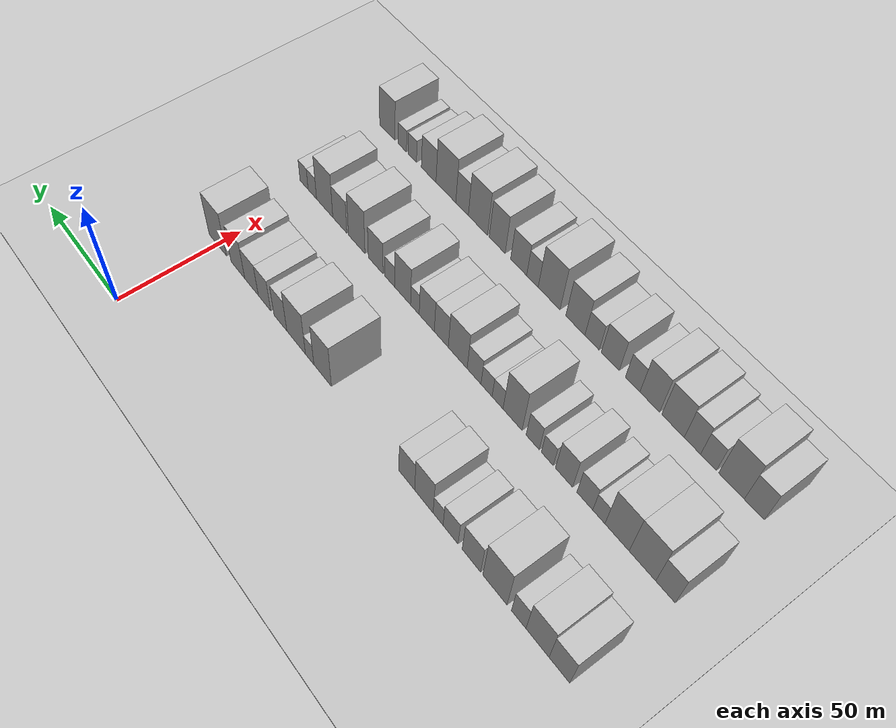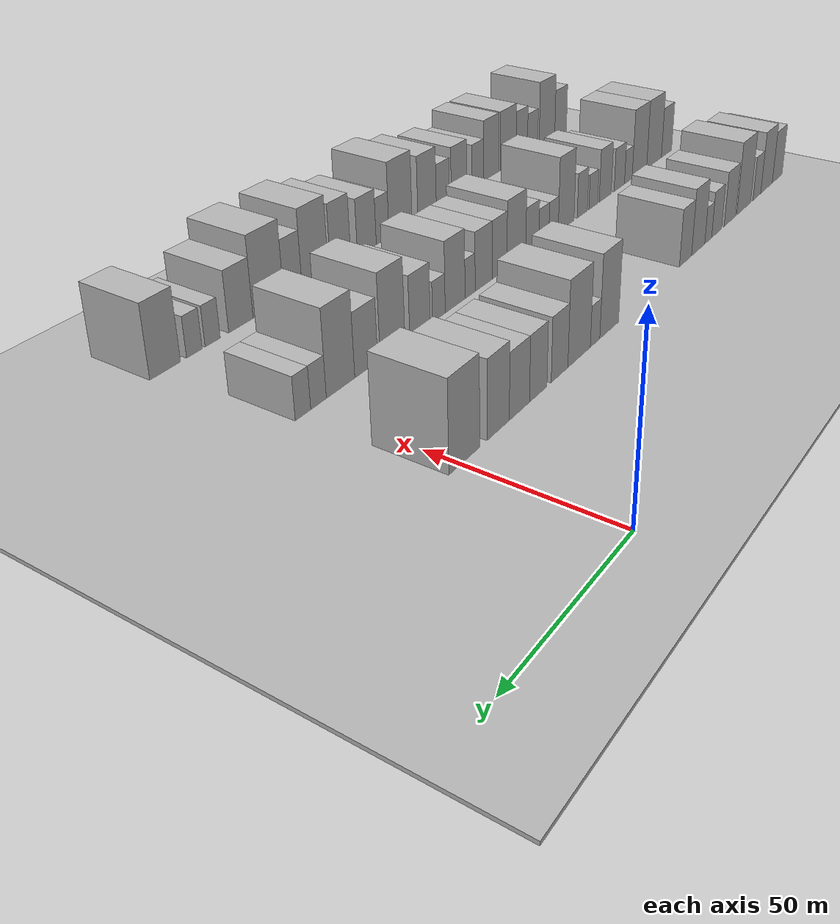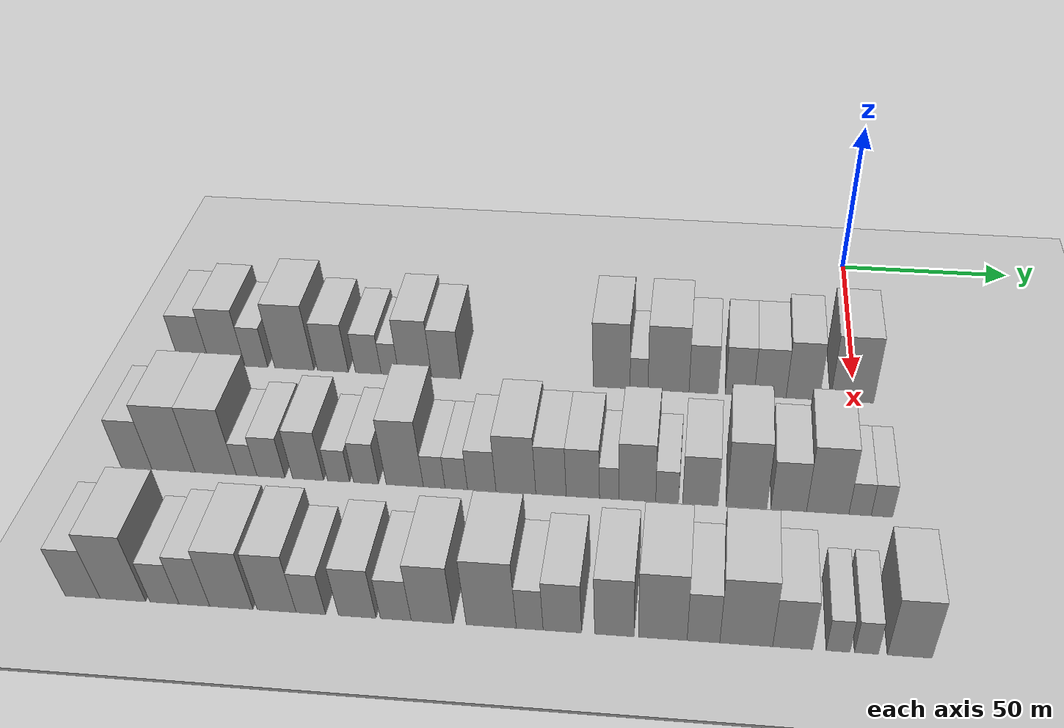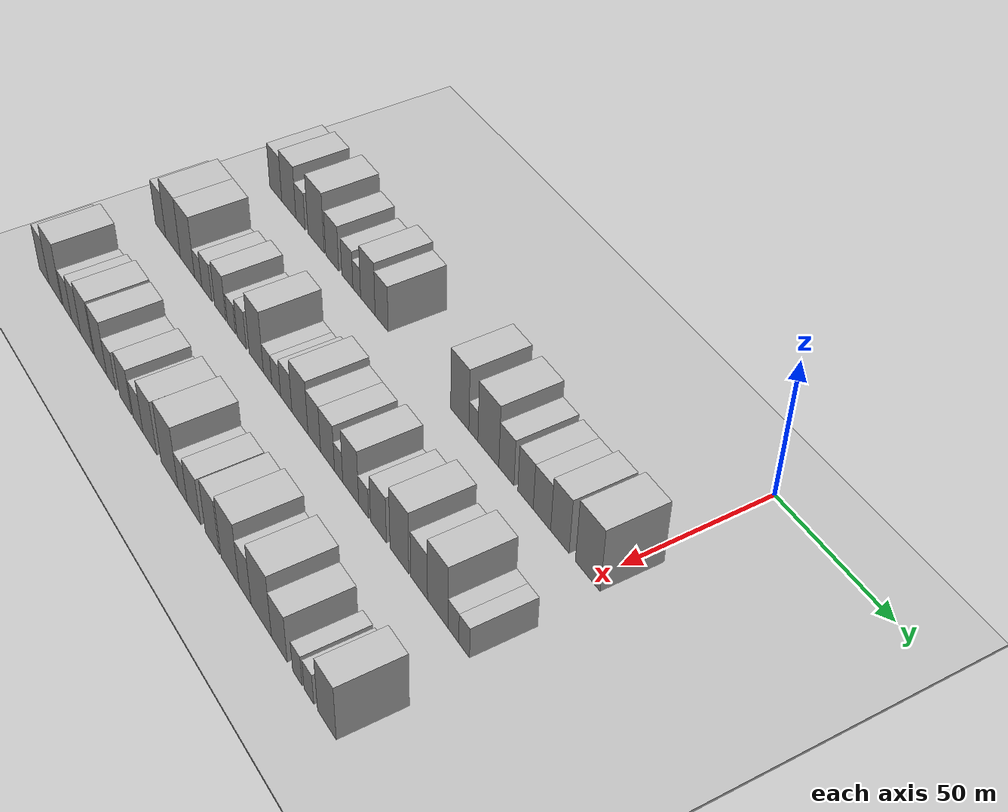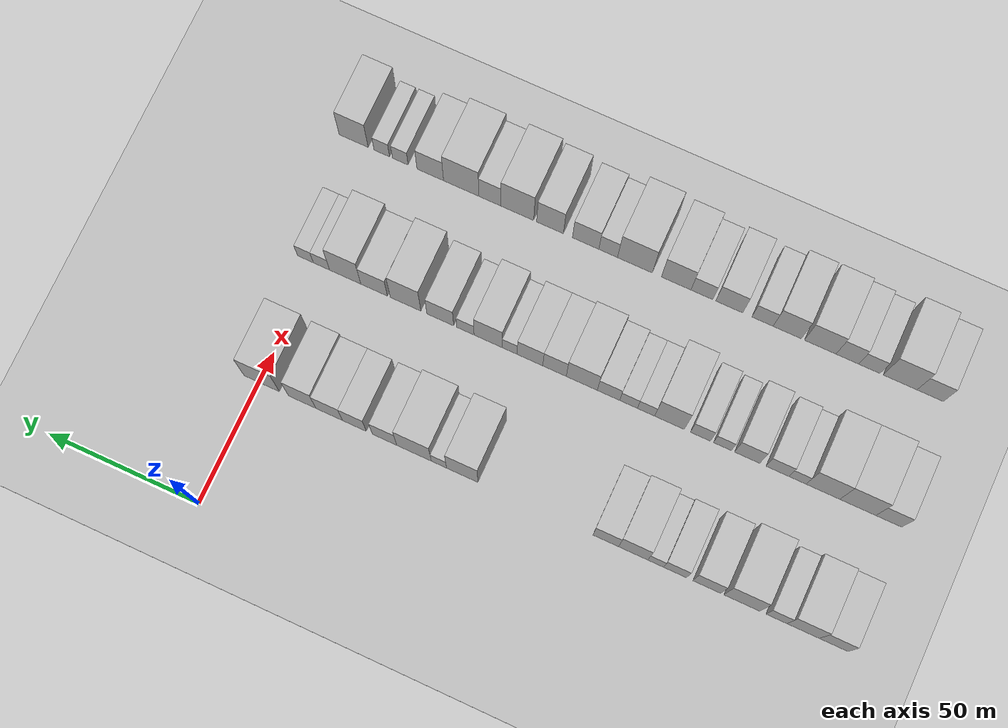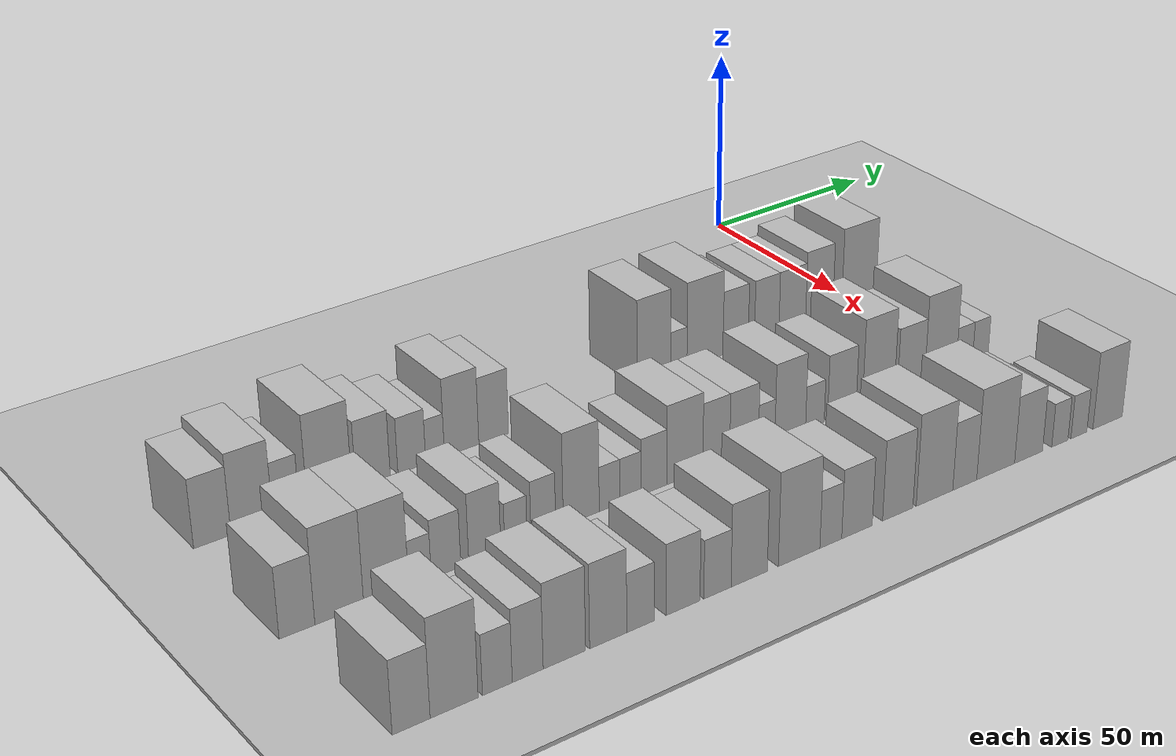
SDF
<sdf version="1.6">
 <world name="default">
  <include><name>ground_plane_1</name><uri>model://HANNAS_ground_plane</uri></include>
  <include>
   <name>ground_plane_2</name>
   <uri>model://HANNAS_ground_plane</uri>
   <pose>100 0 0  0 0 0</pose>
  </include>
  <model name="building_20">
   <static>1</static>
   <pose>50.0000 -185.6342 0 0.000000 0.000000 0.000000</pose>
   <link name="link">
    <pose>0 0 9.00 0 0 0</pose>
    <collision name="collision"><geometry><box><size>20.0000 8.9306 18.0000</size></box></geometry></collision>
    <visual name="visual">
     <cast_shadows>0</cast_shadows>
     <geometry><box><size>20.0000 8.9306 18.0000</size></box></geometry>
     <material>
      <script>
       <uri>model://HANNAS_wall/materials/scripts</uri>
       <uri>model://HANNAS_wall/materials/textures</uri>
       <name>vrc/HANNAS_wall</name>
      </script>
     </material>
    </visual>
   </link>
  </model>
  <model name="building_21">
   <static>1</static>
   <pose>50.0000 -176.0748 0 0.000000 0.000000 0.000000</pose>
   <link name="link">
    <pose>0 0 10.50 0 0 0</pose>
    <collision name="collision"><geometry><box><size>20.0000 10.1881 21.0000</size></box></geometry></collision>
    <visual name="visual">
     <cast_shadows>0</cast_shadows>
     <geometry><box><size>20.0000 10.1881 21.0000</size></box></geometry>
     <material>
      <script>
       <uri>model://HANNAS_wall/materials/scripts</uri>
       <uri>model://HANNAS_wall/materials/textures</uri>
       <name>vrc/HANNAS_wall</name>
      </script>
     </material>
    </visual>
   </link>
  </model>
  <model name="building_22">
   <static>1</static>
   <pose>50.0000 -167.6846 0 0.000000 0.000000 0.000000</pose>
   <link name="link">
    <pose>0 0 7.50 0 0 0</pose>
    <collision name="collision"><geometry><box><size>20.0000 6.5922 15.0000</size></box></geometry></collision>
    <visual name="visual">
     <cast_shadows>0</cast_shadows>
     <geometry><box><size>20.0000 6.5922 15.0000</size></box></geometry>
     <material>
      <script>
       <uri>model://HANNAS_wall/materials/scripts</uri>
       <uri>model://HANNAS_wall/materials/textures</uri>
       <name>vrc/HANNAS_wall</name>
      </script>
     </material>
    </visual>
   </link>
  </model>
  <model name="building_23">
   <static>1</static>
   <pose>50.0000 -156.7351 0 0.000000 0.000000 0.000000</pose>
   <link name="link">
    <pose>0 0 12.00 0 0 0</pose>
    <collision name="collision"><geometry><box><size>20.0000 11.3069 24.0000</size></box></geometry></collision>
    <visual name="visual">
     <cast_shadows>0</cast_shadows>
     <geometry><box><size>20.0000 11.3069 24.0000</size></box></geometry>
     <material>
      <script>
       <uri>model://HANNAS_wall/materials/scripts</uri>
       <uri>model://HANNAS_wall/materials/textures</uri>
       <name>vrc/HANNAS_wall</name>
      </script>
     </material>
    </visual>
   </link>
  </model>
  <model name="building_24">
   <static>1</static>
   <pose>50.0000 -145.6544 0 0.000000 0.000000 0.000000</pose>
   <link name="link">
    <pose>0 0 9.00 0 0 0</pose>
    <collision name="collision"><geometry><box><size>20.0000 8.8546 18.0000</size></box></geometry></collision>
    <visual name="visual">
     <cast_shadows>0</cast_shadows>
     <geometry><box><size>20.0000 8.8546 18.0000</size></box></geometry>
     <material>
      <script>
       <uri>model://HANNAS_wall/materials/scripts</uri>
       <uri>model://HANNAS_wall/materials/textures</uri>
       <name>vrc/HANNAS_wall</name>
      </script>
     </material>
    </visual>
   </link>
  </model>
  <model name="building_25">
   <static>1</static>
   <pose>50.0000 -135.5362 0 0.000000 0.000000 0.000000</pose>
   <link name="link">
    <pose>0 0 7.50 0 0 0</pose>
    <collision name="collision"><geometry><box><size>20.0000 7.3818 15.0000</size></box></geometry></collision>
    <visual name="visual">
     <cast_shadows>0</cast_shadows>
     <geometry><box><size>20.0000 7.3818 15.0000</size></box></geometry>
     <material>
      <script>
       <uri>model://HANNAS_wall/materials/scripts</uri>
       <uri>model://HANNAS_wall/materials/textures</uri>
       <name>vrc/HANNAS_wall</name>
      </script>
     </material>
    </visual>
   </link>
  </model>
  <model name="building_26">
   <static>1</static>
   <pose>50.0000 -129.3392 0 0.000000 0.000000 0.000000</pose>
   <link name="link">
    <pose>0 0 6.00 0 0 0</pose>
    <collision name="collision"><geometry><box><size>20.0000 5.0122 12.0000</size></box></geometry></collision>
    <visual name="visual">
     <cast_shadows>0</cast_shadows>
     <geometry><box><size>20.0000 5.0122 12.0000</size></box></geometry>
     <material>
      <script>
       <uri>model://HANNAS_wall/materials/scripts</uri>
       <uri>model://HANNAS_wall/materials/textures</uri>
       <name>vrc/HANNAS_wall</name>
      </script>
     </material>
    </visual>
   </link>
  </model>
  <model name="building_27">
   <static>1</static>
   <pose>50.0000 -122.1619 0 0.000000 0.000000 0.000000</pose>
   <link name="link">
    <pose>0 0 10.50 0 0 0</pose>
    <collision name="collision"><geometry><box><size>20.0000 9.3425 21.0000</size></box></geometry></collision>
    <visual name="visual">
     <cast_shadows>0</cast_shadows>
     <geometry><box><size>20.0000 9.3425 21.0000</size></box></geometry>
     <material>
      <script>
       <uri>model://HANNAS_wall/materials/scripts</uri>
       <uri>model://HANNAS_wall/materials/textures</uri>
       <name>vrc/HANNAS_wall</name>
      </script>
     </material>
    </visual>
   </link>
  </model>
  <model name="building_28">
   <static>1</static>
   <pose>50.0000 -113.3848 0 0.000000 0.000000 0.000000</pose>
   <link name="link">
    <pose>0 0 9.00 0 0 0</pose>
    <collision name="collision"><geometry><box><size>20.0000 8.2117 18.0000</size></box></geometry></collision>
    <visual name="visual">
     <cast_shadows>0</cast_shadows>
     <geometry><box><size>20.0000 8.2117 18.0000</size></box></geometry>
     <material>
      <script>
       <uri>model://HANNAS_wall/materials/scripts</uri>
       <uri>model://HANNAS_wall/materials/textures</uri>
       <name>vrc/HANNAS_wall</name>
      </script>
     </material>
    </visual>
   </link>
  </model>
  <model name="building_29">
   <static>1</static>
   <pose>50.0000 -66.9518 0 0.000000 0.000000 0.000000</pose>
   <link name="link">
    <pose>0 0 12.00 0 0 0</pose>
    <collision name="collision"><geometry><box><size>20.0000 10.2181 24.0000</size></box></geometry></collision>
    <visual name="visual">
     <cast_shadows>0</cast_shadows>
     <geometry><box><size>20.0000 10.2181 24.0000</size></box></geometry>
     <material>
      <script>
       <uri>model://HANNAS_wall/materials/scripts</uri>
       <uri>model://HANNAS_wall/materials/textures</uri>
       <name>vrc/HANNAS_wall</name>
      </script>
     </material>
    </visual>
   </link>
  </model>
  <model name="building_30">
   <static>1</static>
   <pose>50.0000 -59.3542 0 0.000000 0.000000 0.000000</pose>
   <link name="link">
    <pose>0 0 6.00 0 0 0</pose>
    <collision name="collision"><geometry><box><size>20.0000 4.9770 12.0000</size></box></geometry></collision>
    <visual name="visual">
     <cast_shadows>0</cast_shadows>
     <geometry><box><size>20.0000 4.9770 12.0000</size></box></geometry>
     <material>
      <script>
       <uri>model://HANNAS_wall/materials/scripts</uri>
       <uri>model://HANNAS_wall/materials/textures</uri>
       <name>vrc/HANNAS_wall</name>
      </script>
     </material>
    </visual>
   </link>
  </model>
  <model name="building_31">
   <static>1</static>
   <pose>50.0000 -51.2099 0 0.000000 0.000000 0.000000</pose>
   <link name="link">
    <pose>0 0 12.00 0 0 0</pose>
    <collision name="collision"><geometry><box><size>20.0000 11.3114 24.0000</size></box></geometry></collision>
    <visual name="visual">
     <cast_shadows>0</cast_shadows>
     <geometry><box><size>20.0000 11.3114 24.0000</size></box></geometry>
     <material>
      <script>
       <uri>model://HANNAS_wall/materials/scripts</uri>
       <uri>model://HANNAS_wall/materials/textures</uri>
       <name>vrc/HANNAS_wall</name>
      </script>
     </material>
    </visual>
   </link>
  </model>
  <model name="building_32">
   <static>1</static>
   <pose>50.0000 -41.5600 0 0.000000 0.000000 0.000000</pose>
   <link name="link">
    <pose>0 0 9.00 0 0 0</pose>
    <collision name="collision"><geometry><box><size>20.0000 7.9885 18.0000</size></box></geometry></collision>
    <visual name="visual">
     <cast_shadows>0</cast_shadows>
     <geometry><box><size>20.0000 7.9885 18.0000</size></box></geometry>
     <material>
      <script>
       <uri>model://HANNAS_wall/materials/scripts</uri>
       <uri>model://HANNAS_wall/materials/textures</uri>
       <name>vrc/HANNAS_wall</name>
      </script>
     </material>
    </visual>
   </link>
  </model>
  <model name="building_33">
   <static>1</static>
   <pose>50.0000 -31.6120 0 0.000000 0.000000 0.000000</pose>
   <link name="link">
    <pose>0 0 9.00 0 0 0</pose>
    <collision name="collision"><geometry><box><size>20.0000 7.9074 18.0000</size></box></geometry></collision>
    <visual name="visual">
     <cast_shadows>0</cast_shadows>
     <geometry><box><size>20.0000 7.9074 18.0000</size></box></geometry>
     <material>
      <script>
       <uri>model://HANNAS_wall/materials/scripts</uri>
       <uri>model://HANNAS_wall/materials/textures</uri>
       <name>vrc/HANNAS_wall</name>
      </script>
     </material>
    </visual>
   </link>
  </model>
  <model name="building_34">
   <static>1</static>
   <pose>50.0000 -23.2832 0 0.000000 0.000000 0.000000</pose>
   <link name="link">
    <pose>0 0 9.00 0 0 0</pose>
    <collision name="collision"><geometry><box><size>20.0000 8.7502 18.0000</size></box></geometry></collision>
    <visual name="visual">
     <cast_shadows>0</cast_shadows>
     <geometry><box><size>20.0000 8.7502 18.0000</size></box></geometry>
     <material>
      <script>
       <uri>model://HANNAS_wall/materials/scripts</uri>
       <uri>model://HANNAS_wall/materials/textures</uri>
       <name>vrc/HANNAS_wall</name>
      </script>
     </material>
    </visual>
   </link>
  </model>
  <model name="building_35">
   <static>1</static>
   <pose>50.0000 -14.3598 0 0.000000 0.000000 0.000000</pose>
   <link name="link">
    <pose>0 0 10.50 0 0 0</pose>
    <collision name="collision"><geometry><box><size>20.0000 9.0968 21.0000</size></box></geometry></collision>
    <visual name="visual">
     <cast_shadows>0</cast_shadows>
     <geometry><box><size>20.0000 9.0968 21.0000</size></box></geometry>
     <material>
      <script>
       <uri>model://HANNAS_wall/materials/scripts</uri>
       <uri>model://HANNAS_wall/materials/textures</uri>
       <name>vrc/HANNAS_wall</name>
      </script>
     </material>
    </visual>
   </link>
  </model>
  <model name="building_36">
   <static>1</static>
   <pose>50.0000 -0.9406 0 0.000000 0.000000 0.000000</pose>
   <link name="link">
    <pose>0 0 12.00 0 0 0</pose>
    <collision name="collision"><geometry><box><size>20.0000 11.7416 24.0000</size></box></geometry></collision>
    <visual name="visual">
     <cast_shadows>0</cast_shadows>
     <geometry><box><size>20.0000 11.7416 24.0000</size></box></geometry>
     <material>
      <script>
       <uri>model://HANNAS_wall/materials/scripts</uri>
       <uri>model://HANNAS_wall/materials/textures</uri>
       <name>vrc/HANNAS_wall</name>
      </script>
     </material>
    </visual>
   </link>
  </model>
  <model name="building_104">
   <static>1</static>
   <pose>90.0000 -186.7082 0 0.000000 0.000000 0.000000</pose>
   <link name="link">
    <pose>0 0 9.00 0 0 0</pose>
    <collision name="collision"><geometry><box><size>20.0000 8.2007 18.0000</size></box></geometry></collision>
    <visual name="visual">
     <cast_shadows>0</cast_shadows>
     <geometry><box><size>20.0000 8.2007 18.0000</size></box></geometry>
     <material>
      <script>
       <uri>model://HANNAS_wall/materials/scripts</uri>
       <uri>model://HANNAS_wall/materials/textures</uri>
       <name>vrc/HANNAS_wall</name>
      </script>
     </material>
    </visual>
   </link>
  </model>
  <model name="building_105">
   <static>1</static>
   <pose>90.0000 -176.8852 0 0.000000 0.000000 0.000000</pose>
   <link name="link">
    <pose>0 0 12.00 0 0 0</pose>
    <collision name="collision"><geometry><box><size>20.0000 11.4454 24.0000</size></box></geometry></collision>
    <visual name="visual">
     <cast_shadows>0</cast_shadows>
     <geometry><box><size>20.0000 11.4454 24.0000</size></box></geometry>
     <material>
      <script>
       <uri>model://HANNAS_wall/materials/scripts</uri>
       <uri>model://HANNAS_wall/materials/textures</uri>
       <name>vrc/HANNAS_wall</name>
      </script>
     </material>
    </visual>
   </link>
  </model>
  <model name="building_106">
   <static>1</static>
   <pose>90.0000 -165.7605 0 0.000000 0.000000 0.000000</pose>
   <link name="link">
    <pose>0 0 12.00 0 0 0</pose>
    <collision name="collision"><geometry><box><size>20.0000 10.8039 24.0000</size></box></geometry></collision>
    <visual name="visual">
     <cast_shadows>0</cast_shadows>
     <geometry><box><size>20.0000 10.8039 24.0000</size></box></geometry>
     <material>
      <script>
       <uri>model://HANNAS_wall/materials/scripts</uri>
       <uri>model://HANNAS_wall/materials/textures</uri>
       <name>vrc/HANNAS_wall</name>
      </script>
     </material>
    </visual>
   </link>
  </model>
  <model name="building_107">
   <static>1</static>
   <pose>90.0000 -157.6011 0 0.000000 0.000000 0.000000</pose>
   <link name="link">
    <pose>0 0 6.00 0 0 0</pose>
    <collision name="collision"><geometry><box><size>20.0000 5.5151 12.0000</size></box></geometry></collision>
    <visual name="visual">
     <cast_shadows>0</cast_shadows>
     <geometry><box><size>20.0000 5.5151 12.0000</size></box></geometry>
     <material>
      <script>
       <uri>model://HANNAS_wall/materials/scripts</uri>
       <uri>model://HANNAS_wall/materials/textures</uri>
       <name>vrc/HANNAS_wall</name>
      </script>
     </material>
    </visual>
   </link>
  </model>
  <model name="building_108">
   <static>1</static>
   <pose>90.0000 -151.1833 0 0.000000 0.000000 0.000000</pose>
   <link name="link">
    <pose>0 0 7.50 0 0 0</pose>
    <collision name="collision"><geometry><box><size>20.0000 7.3204 15.0000</size></box></geometry></collision>
    <visual name="visual">
     <cast_shadows>0</cast_shadows>
     <geometry><box><size>20.0000 7.3204 15.0000</size></box></geometry>
     <material>
      <script>
       <uri>model://HANNAS_wall/materials/scripts</uri>
       <uri>model://HANNAS_wall/materials/textures</uri>
       <name>vrc/HANNAS_wall</name>
      </script>
     </material>
    </visual>
   </link>
  </model>
  <model name="building_109">
   <static>1</static>
   <pose>90.0000 -141.4580 0 0.000000 0.000000 0.000000</pose>
   <link name="link">
    <pose>0 0 9.00 0 0 0</pose>
    <collision name="collision"><geometry><box><size>20.0000 8.1304 18.0000</size></box></geometry></collision>
    <visual name="visual">
     <cast_shadows>0</cast_shadows>
     <geometry><box><size>20.0000 8.1304 18.0000</size></box></geometry>
     <material>
      <script>
       <uri>model://HANNAS_wall/materials/scripts</uri>
       <uri>model://HANNAS_wall/materials/textures</uri>
       <name>vrc/HANNAS_wall</name>
      </script>
     </material>
    </visual>
   </link>
  </model>
  <model name="building_110">
   <static>1</static>
   <pose>90.0000 -133.4991 0 0.000000 0.000000 0.000000</pose>
   <link name="link">
    <pose>0 0 6.00 0 0 0</pose>
    <collision name="collision"><geometry><box><size>20.0000 5.7874 12.0000</size></box></geometry></collision>
    <visual name="visual">
     <cast_shadows>0</cast_shadows>
     <geometry><box><size>20.0000 5.7874 12.0000</size></box></geometry>
     <material>
      <script>
       <uri>model://HANNAS_wall/materials/scripts</uri>
       <uri>model://HANNAS_wall/materials/textures</uri>
       <name>vrc/HANNAS_wall</name>
      </script>
     </material>
    </visual>
   </link>
  </model>
  <model name="building_111">
   <static>1</static>
   <pose>90.0000 -126.3708 0 0.000000 0.000000 0.000000</pose>
   <link name="link">
    <pose>0 0 7.50 0 0 0</pose>
    <collision name="collision"><geometry><box><size>20.0000 6.4692 15.0000</size></box></geometry></collision>
    <visual name="visual">
     <cast_shadows>0</cast_shadows>
     <geometry><box><size>20.0000 6.4692 15.0000</size></box></geometry>
     <material>
      <script>
       <uri>model://HANNAS_wall/materials/scripts</uri>
       <uri>model://HANNAS_wall/materials/textures</uri>
       <name>vrc/HANNAS_wall</name>
      </script>
     </material>
    </visual>
   </link>
  </model>
  <model name="building_112">
   <static>1</static>
   <pose>90.0000 -116.3324 0 0.000000 0.000000 0.000000</pose>
   <link name="link">
    <pose>0 0 12.00 0 0 0</pose>
    <collision name="collision"><geometry><box><size>20.0000 9.6076 24.0000</size></box></geometry></collision>
    <visual name="visual">
     <cast_shadows>0</cast_shadows>
     <geometry><box><size>20.0000 9.6076 24.0000</size></box></geometry>
     <material>
      <script>
       <uri>model://HANNAS_wall/materials/scripts</uri>
       <uri>model://HANNAS_wall/materials/textures</uri>
       <name>vrc/HANNAS_wall</name>
      </script>
     </material>
    </visual>
   </link>
  </model>
  <model name="building_113">
   <static>1</static>
   <pose>90.0000 -108.7279 0 0.000000 0.000000 0.000000</pose>
   <link name="link">
    <pose>0 0 6.00 0 0 0</pose>
    <collision name="collision"><geometry><box><size>20.0000 5.6013 12.0000</size></box></geometry></collision>
    <visual name="visual">
     <cast_shadows>0</cast_shadows>
     <geometry><box><size>20.0000 5.6013 12.0000</size></box></geometry>
     <material>
      <script>
       <uri>model://HANNAS_wall/materials/scripts</uri>
       <uri>model://HANNAS_wall/materials/textures</uri>
       <name>vrc/HANNAS_wall</name>
      </script>
     </material>
    </visual>
   </link>
  </model>
  <model name="building_114">
   <static>1</static>
   <pose>90.0000 -103.0434 0 0.000000 0.000000 0.000000</pose>
   <link name="link">
    <pose>0 0 6.00 0 0 0</pose>
    <collision name="collision"><geometry><box><size>20.0000 5.7677 12.0000</size></box></geometry></collision>
    <visual name="visual">
     <cast_shadows>0</cast_shadows>
     <geometry><box><size>20.0000 5.7677 12.0000</size></box></geometry>
     <material>
      <script>
       <uri>model://HANNAS_wall/materials/scripts</uri>
       <uri>model://HANNAS_wall/materials/textures</uri>
       <name>vrc/HANNAS_wall</name>
      </script>
     </material>
    </visual>
   </link>
  </model>
  <model name="building_115">
   <static>1</static>
   <pose>90.0000 -96.5003 0 0.000000 0.000000 0.000000</pose>
   <link name="link">
    <pose>0 0 7.50 0 0 0</pose>
    <collision name="collision"><geometry><box><size>20.0000 7.3185 15.0000</size></box></geometry></collision>
    <visual name="visual">
     <cast_shadows>0</cast_shadows>
     <geometry><box><size>20.0000 7.3185 15.0000</size></box></geometry>
     <material>
      <script>
       <uri>model://HANNAS_wall/materials/scripts</uri>
       <uri>model://HANNAS_wall/materials/textures</uri>
       <name>vrc/HANNAS_wall</name>
      </script>
     </material>
    </visual>
   </link>
  </model>
  <model name="building_116">
   <static>1</static>
   <pose>90.0000 -87.7592 0 0.000000 0.000000 0.000000</pose>
   <link name="link">
    <pose>0 0 10.50 0 0 0</pose>
    <collision name="collision"><geometry><box><size>20.0000 10.1635 21.0000</size></box></geometry></collision>
    <visual name="visual">
     <cast_shadows>0</cast_shadows>
     <geometry><box><size>20.0000 10.1635 21.0000</size></box></geometry>
     <material>
      <script>
       <uri>model://HANNAS_wall/materials/scripts</uri>
       <uri>model://HANNAS_wall/materials/textures</uri>
       <name>vrc/HANNAS_wall</name>
      </script>
     </material>
    </visual>
   </link>
  </model>
  <model name="building_117">
   <static>1</static>
   <pose>90.0000 -78.8114 0 0.000000 0.000000 0.000000</pose>
   <link name="link">
    <pose>0 0 9.00 0 0 0</pose>
    <collision name="collision"><geometry><box><size>20.0000 7.7322 18.0000</size></box></geometry></collision>
    <visual name="visual">
     <cast_shadows>0</cast_shadows>
     <geometry><box><size>20.0000 7.7322 18.0000</size></box></geometry>
     <material>
      <script>
       <uri>model://HANNAS_wall/materials/scripts</uri>
       <uri>model://HANNAS_wall/materials/textures</uri>
       <name>vrc/HANNAS_wall</name>
      </script>
     </material>
    </visual>
   </link>
  </model>
  <model name="building_118">
   <static>1</static>
   <pose>90.0000 -70.7205 0 0.000000 0.000000 0.000000</pose>
   <link name="link">
    <pose>0 0 9.00 0 0 0</pose>
    <collision name="collision"><geometry><box><size>20.0000 8.4495 18.0000</size></box></geometry></collision>
    <visual name="visual">
     <cast_shadows>0</cast_shadows>
     <geometry><box><size>20.0000 8.4495 18.0000</size></box></geometry>
     <material>
      <script>
       <uri>model://HANNAS_wall/materials/scripts</uri>
       <uri>model://HANNAS_wall/materials/textures</uri>
       <name>vrc/HANNAS_wall</name>
      </script>
     </material>
    </visual>
   </link>
  </model>
  <model name="building_119">
   <static>1</static>
   <pose>90.0000 -64.0453 0 0.000000 0.000000 0.000000</pose>
   <link name="link">
    <pose>0 0 6.00 0 0 0</pose>
    <collision name="collision"><geometry><box><size>20.0000 4.9009 12.0000</size></box></geometry></collision>
    <visual name="visual">
     <cast_shadows>0</cast_shadows>
     <geometry><box><size>20.0000 4.9009 12.0000</size></box></geometry>
     <material>
      <script>
       <uri>model://HANNAS_wall/materials/scripts</uri>
       <uri>model://HANNAS_wall/materials/textures</uri>
       <name>vrc/HANNAS_wall</name>
      </script>
     </material>
    </visual>
   </link>
  </model>
  <model name="building_120">
   <static>1</static>
   <pose>90.0000 -56.9496 0 0.000000 0.000000 0.000000</pose>
   <link name="link">
    <pose>0 0 10.50 0 0 0</pose>
    <collision name="collision"><geometry><box><size>20.0000 9.2904 21.0000</size></box></geometry></collision>
    <visual name="visual">
     <cast_shadows>0</cast_shadows>
     <geometry><box><size>20.0000 9.2904 21.0000</size></box></geometry>
     <material>
      <script>
       <uri>model://HANNAS_wall/materials/scripts</uri>
       <uri>model://HANNAS_wall/materials/textures</uri>
       <name>vrc/HANNAS_wall</name>
      </script>
     </material>
    </visual>
   </link>
  </model>
  <model name="building_121">
   <static>1</static>
   <pose>90.0000 -49.4290 0 0.000000 0.000000 0.000000</pose>
   <link name="link">
    <pose>0 0 6.00 0 0 0</pose>
    <collision name="collision"><geometry><box><size>20.0000 5.7508 12.0000</size></box></geometry></collision>
    <visual name="visual">
     <cast_shadows>0</cast_shadows>
     <geometry><box><size>20.0000 5.7508 12.0000</size></box></geometry>
     <material>
      <script>
       <uri>model://HANNAS_wall/materials/scripts</uri>
       <uri>model://HANNAS_wall/materials/textures</uri>
       <name>vrc/HANNAS_wall</name>
      </script>
     </material>
    </visual>
   </link>
  </model>
  <model name="building_122">
   <static>1</static>
   <pose>90.0000 -41.1058 0 0.000000 0.000000 0.000000</pose>
   <link name="link">
    <pose>0 0 9.00 0 0 0</pose>
    <collision name="collision"><geometry><box><size>20.0000 8.8958 18.0000</size></box></geometry></collision>
    <visual name="visual">
     <cast_shadows>0</cast_shadows>
     <geometry><box><size>20.0000 8.8958 18.0000</size></box></geometry>
     <material>
      <script>
       <uri>model://HANNAS_wall/materials/scripts</uri>
       <uri>model://HANNAS_wall/materials/textures</uri>
       <name>vrc/HANNAS_wall</name>
      </script>
     </material>
    </visual>
   </link>
  </model>
  <model name="building_123">
   <static>1</static>
   <pose>90.0000 -29.5715 0 0.000000 0.000000 0.000000</pose>
   <link name="link">
    <pose>0 0 12.00 0 0 0</pose>
    <collision name="collision"><geometry><box><size>20.0000 10.1729 24.0000</size></box></geometry></collision>
    <visual name="visual">
     <cast_shadows>0</cast_shadows>
     <geometry><box><size>20.0000 10.1729 24.0000</size></box></geometry>
     <material>
      <script>
       <uri>model://HANNAS_wall/materials/scripts</uri>
       <uri>model://HANNAS_wall/materials/textures</uri>
       <name>vrc/HANNAS_wall</name>
      </script>
     </material>
    </visual>
   </link>
  </model>
  <model name="building_124">
   <static>1</static>
   <pose>90.0000 -19.0486 0 0.000000 0.000000 0.000000</pose>
   <link name="link">
    <pose>0 0 9.00 0 0 0</pose>
    <collision name="collision"><geometry><box><size>20.0000 8.8729 18.0000</size></box></geometry></collision>
    <visual name="visual">
     <cast_shadows>0</cast_shadows>
     <geometry><box><size>20.0000 8.8729 18.0000</size></box></geometry>
     <material>
      <script>
       <uri>model://HANNAS_wall/materials/scripts</uri>
       <uri>model://HANNAS_wall/materials/textures</uri>
       <name>vrc/HANNAS_wall</name>
      </script>
     </material>
    </visual>
   </link>
  </model>
  <model name="building_125">
   <static>1</static>
   <pose>90.0000 -9.3797 0 0.000000 0.000000 0.000000</pose>
   <link name="link">
    <pose>0 0 12.00 0 0 0</pose>
    <collision name="collision"><geometry><box><size>20.0000 10.4649 24.0000</size></box></geometry></collision>
    <visual name="visual">
     <cast_shadows>0</cast_shadows>
     <geometry><box><size>20.0000 10.4649 24.0000</size></box></geometry>
     <material>
      <script>
       <uri>model://HANNAS_wall/materials/scripts</uri>
       <uri>model://HANNAS_wall/materials/textures</uri>
       <name>vrc/HANNAS_wall</name>
      </script>
     </material>
    </visual>
   </link>
  </model>
  <model name="building_126">
   <static>1</static>
   <pose>90.0000 -1.3947 0 0.000000 0.000000 0.000000</pose>
   <link name="link">
    <pose>0 0 6.00 0 0 0</pose>
    <collision name="collision"><geometry><box><size>20.0000 5.5050 12.0000</size></box></geometry></collision>
    <visual name="visual">
     <cast_shadows>0</cast_shadows>
     <geometry><box><size>20.0000 5.5050 12.0000</size></box></geometry>
     <material>
      <script>
       <uri>model://HANNAS_wall/materials/scripts</uri>
       <uri>model://HANNAS_wall/materials/textures</uri>
       <name>vrc/HANNAS_wall</name>
      </script>
     </material>
    </visual>
   </link>
  </model>
  <model name="building_127">
   <static>1</static>
   <pose>90.0000 4.0115 0 0.000000 0.000000 0.000000</pose>
   <link name="link">
    <pose>0 0 6.00 0 0 0</pose>
    <collision name="collision"><geometry><box><size>20.0000 5.3074 12.0000</size></box></geometry></collision>
    <visual name="visual">
     <cast_shadows>0</cast_shadows>
     <geometry><box><size>20.0000 5.3074 12.0000</size></box></geometry>
     <material>
      <script>
       <uri>model://HANNAS_wall/materials/scripts</uri>
       <uri>model://HANNAS_wall/materials/textures</uri>
       <name>vrc/HANNAS_wall</name>
      </script>
     </material>
    </visual>
   </link>
  </model>
  <model name="building_189">
   <static>1</static>
   <pose>130.0000 -183.8083 0 0.000000 0.000000 0.000000</pose>
   <link name="link">
    <pose>0 0 9.00 0 0 0</pose>
    <collision name="collision"><geometry><box><size>20.0000 8.4445 18.0000</size></box></geometry></collision>
    <visual name="visual">
     <cast_shadows>0</cast_shadows>
     <geometry><box><size>20.0000 8.4445 18.0000</size></box></geometry>
     <material>
      <script>
       <uri>model://HANNAS_wall/materials/scripts</uri>
       <uri>model://HANNAS_wall/materials/textures</uri>
       <name>vrc/HANNAS_wall</name>
      </script>
     </material>
    </visual>
   </link>
  </model>
  <model name="building_190">
   <static>1</static>
   <pose>130.0000 -174.1275 0 0.000000 0.000000 0.000000</pose>
   <link name="link">
    <pose>0 0 12.00 0 0 0</pose>
    <collision name="collision"><geometry><box><size>20.0000 10.9171 24.0000</size></box></geometry></collision>
    <visual name="visual">
     <cast_shadows>0</cast_shadows>
     <geometry><box><size>20.0000 10.9171 24.0000</size></box></geometry>
     <material>
      <script>
       <uri>model://HANNAS_wall/materials/scripts</uri>
       <uri>model://HANNAS_wall/materials/textures</uri>
       <name>vrc/HANNAS_wall</name>
      </script>
     </material>
    </visual>
   </link>
  </model>
  <model name="building_191">
   <static>1</static>
   <pose>130.0000 -164.1976 0 0.000000 0.000000 0.000000</pose>
   <link name="link">
    <pose>0 0 7.50 0 0 0</pose>
    <collision name="collision"><geometry><box><size>20.0000 6.9429 15.0000</size></box></geometry></collision>
    <visual name="visual">
     <cast_shadows>0</cast_shadows>
     <geometry><box><size>20.0000 6.9429 15.0000</size></box></geometry>
     <material>
      <script>
       <uri>model://HANNAS_wall/materials/scripts</uri>
       <uri>model://HANNAS_wall/materials/textures</uri>
       <name>vrc/HANNAS_wall</name>
      </script>
     </material>
    </visual>
   </link>
  </model>
  <model name="building_192">
   <static>1</static>
   <pose>130.0000 -157.0628 0 0.000000 0.000000 0.000000</pose>
   <link name="link">
    <pose>0 0 9.00 0 0 0</pose>
    <collision name="collision"><geometry><box><size>20.0000 7.3265 18.0000</size></box></geometry></collision>
    <visual name="visual">
     <cast_shadows>0</cast_shadows>
     <geometry><box><size>20.0000 7.3265 18.0000</size></box></geometry>
     <material>
      <script>
       <uri>model://HANNAS_wall/materials/scripts</uri>
       <uri>model://HANNAS_wall/materials/textures</uri>
       <name>vrc/HANNAS_wall</name>
      </script>
     </material>
    </visual>
   </link>
  </model>
  <model name="building_193">
   <static>1</static>
   <pose>130.0000 -148.2778 0 0.000000 0.000000 0.000000</pose>
   <link name="link">
    <pose>0 0 10.50 0 0 0</pose>
    <collision name="collision"><geometry><box><size>20.0000 10.2437 21.0000</size></box></geometry></collision>
    <visual name="visual">
     <cast_shadows>0</cast_shadows>
     <geometry><box><size>20.0000 10.2437 21.0000</size></box></geometry>
     <material>
      <script>
       <uri>model://HANNAS_wall/materials/scripts</uri>
       <uri>model://HANNAS_wall/materials/textures</uri>
       <name>vrc/HANNAS_wall</name>
      </script>
     </material>
    </visual>
   </link>
  </model>
  <model name="building_194">
   <static>1</static>
   <pose>130.0000 -137.5484 0 0.000000 0.000000 0.000000</pose>
   <link name="link">
    <pose>0 0 10.50 0 0 0</pose>
    <collision name="collision"><geometry><box><size>20.0000 9.2151 21.0000</size></box></geometry></collision>
    <visual name="visual">
     <cast_shadows>0</cast_shadows>
     <geometry><box><size>20.0000 9.2151 21.0000</size></box></geometry>
     <material>
      <script>
       <uri>model://HANNAS_wall/materials/scripts</uri>
       <uri>model://HANNAS_wall/materials/textures</uri>
       <name>vrc/HANNAS_wall</name>
      </script>
     </material>
    </visual>
   </link>
  </model>
  <model name="building_195">
   <static>1</static>
   <pose>130.0000 -129.4738 0 0.000000 0.000000 0.000000</pose>
   <link name="link">
    <pose>0 0 7.50 0 0 0</pose>
    <collision name="collision"><geometry><box><size>20.0000 6.9339 15.0000</size></box></geometry></collision>
    <visual name="visual">
     <cast_shadows>0</cast_shadows>
     <geometry><box><size>20.0000 6.9339 15.0000</size></box></geometry>
     <material>
      <script>
       <uri>model://HANNAS_wall/materials/scripts</uri>
       <uri>model://HANNAS_wall/materials/textures</uri>
       <name>vrc/HANNAS_wall</name>
      </script>
     </material>
    </visual>
   </link>
  </model>
  <model name="building_196">
   <static>1</static>
   <pose>130.0000 -118.6009 0 0.000000 0.000000 0.000000</pose>
   <link name="link">
    <pose>0 0 9.00 0 0 0</pose>
    <collision name="collision"><geometry><box><size>20.0000 8.8119 18.0000</size></box></geometry></collision>
    <visual name="visual">
     <cast_shadows>0</cast_shadows>
     <geometry><box><size>20.0000 8.8119 18.0000</size></box></geometry>
     <material>
      <script>
       <uri>model://HANNAS_wall/materials/scripts</uri>
       <uri>model://HANNAS_wall/materials/textures</uri>
       <name>vrc/HANNAS_wall</name>
      </script>
     </material>
    </visual>
   </link>
  </model>
  <model name="building_197">
   <static>1</static>
   <pose>130.0000 -109.5993 0 0.000000 0.000000 0.000000</pose>
   <link name="link">
    <pose>0 0 7.50 0 0 0</pose>
    <collision name="collision"><geometry><box><size>20.0000 7.1913 15.0000</size></box></geometry></collision>
    <visual name="visual">
     <cast_shadows>0</cast_shadows>
     <geometry><box><size>20.0000 7.1913 15.0000</size></box></geometry>
     <material>
      <script>
       <uri>model://HANNAS_wall/materials/scripts</uri>
       <uri>model://HANNAS_wall/materials/textures</uri>
       <name>vrc/HANNAS_wall</name>
      </script>
     </material>
    </visual>
   </link>
  </model>
  <model name="building_198">
   <static>1</static>
   <pose>130.0000 -101.1228 0 0.000000 0.000000 0.000000</pose>
   <link name="link">
    <pose>0 0 10.50 0 0 0</pose>
    <collision name="collision"><geometry><box><size>20.0000 9.7617 21.0000</size></box></geometry></collision>
    <visual name="visual">
     <cast_shadows>0</cast_shadows>
     <geometry><box><size>20.0000 9.7617 21.0000</size></box></geometry>
     <material>
      <script>
       <uri>model://HANNAS_wall/materials/scripts</uri>
       <uri>model://HANNAS_wall/materials/textures</uri>
       <name>vrc/HANNAS_wall</name>
      </script>
     </material>
    </visual>
   </link>
  </model>
  <model name="building_199">
   <static>1</static>
   <pose>130.0000 -87.4715 0 0.000000 0.000000 0.000000</pose>
   <link name="link">
    <pose>0 0 12.00 0 0 0</pose>
    <collision name="collision"><geometry><box><size>20.0000 11.5410 24.0000</size></box></geometry></collision>
    <visual name="visual">
     <cast_shadows>0</cast_shadows>
     <geometry><box><size>20.0000 11.5410 24.0000</size></box></geometry>
     <material>
      <script>
       <uri>model://HANNAS_wall/materials/scripts</uri>
       <uri>model://HANNAS_wall/materials/textures</uri>
       <name>vrc/HANNAS_wall</name>
      </script>
     </material>
    </visual>
   </link>
  </model>
  <model name="building_200">
   <static>1</static>
   <pose>130.0000 -78.6149 0 0.000000 0.000000 0.000000</pose>
   <link name="link">
    <pose>0 0 7.50 0 0 0</pose>
    <collision name="collision"><geometry><box><size>20.0000 6.1722 15.0000</size></box></geometry></collision>
    <visual name="visual">
     <cast_shadows>0</cast_shadows>
     <geometry><box><size>20.0000 6.1722 15.0000</size></box></geometry>
     <material>
      <script>
       <uri>model://HANNAS_wall/materials/scripts</uri>
       <uri>model://HANNAS_wall/materials/textures</uri>
       <name>vrc/HANNAS_wall</name>
      </script>
     </material>
    </visual>
   </link>
  </model>
  <model name="building_201">
   <static>1</static>
   <pose>130.0000 -71.1350 0 0.000000 0.000000 0.000000</pose>
   <link name="link">
    <pose>0 0 9.00 0 0 0</pose>
    <collision name="collision"><geometry><box><size>20.0000 8.7876 18.0000</size></box></geometry></collision>
    <visual name="visual">
     <cast_shadows>0</cast_shadows>
     <geometry><box><size>20.0000 8.7876 18.0000</size></box></geometry>
     <material>
      <script>
       <uri>model://HANNAS_wall/materials/scripts</uri>
       <uri>model://HANNAS_wall/materials/textures</uri>
       <name>vrc/HANNAS_wall</name>
      </script>
     </material>
    </visual>
   </link>
  </model>
  <model name="building_202">
   <static>1</static>
   <pose>130.0000 -59.2641 0 0.000000 0.000000 0.000000</pose>
   <link name="link">
    <pose>0 0 10.50 0 0 0</pose>
    <collision name="collision"><geometry><box><size>20.0000 8.9542 21.0000</size></box></geometry></collision>
    <visual name="visual">
     <cast_shadows>0</cast_shadows>
     <geometry><box><size>20.0000 8.9542 21.0000</size></box></geometry>
     <material>
      <script>
       <uri>model://HANNAS_wall/materials/scripts</uri>
       <uri>model://HANNAS_wall/materials/textures</uri>
       <name>vrc/HANNAS_wall</name>
      </script>
     </material>
    </visual>
   </link>
  </model>
  <model name="building_203">
   <static>1</static>
   <pose>130.0000 -48.2722 0 0.000000 0.000000 0.000000</pose>
   <link name="link">
    <pose>0 0 12.00 0 0 0</pose>
    <collision name="collision"><geometry><box><size>20.0000 11.0297 24.0000</size></box></geometry></collision>
    <visual name="visual">
     <cast_shadows>0</cast_shadows>
     <geometry><box><size>20.0000 11.0297 24.0000</size></box></geometry>
     <material>
      <script>
       <uri>model://HANNAS_wall/materials/scripts</uri>
       <uri>model://HANNAS_wall/materials/textures</uri>
       <name>vrc/HANNAS_wall</name>
      </script>
     </material>
    </visual>
   </link>
  </model>
  <model name="building_204">
   <static>1</static>
   <pose>130.0000 -39.0736 0 0.000000 0.000000 0.000000</pose>
   <link name="link">
    <pose>0 0 9.00 0 0 0</pose>
    <collision name="collision"><geometry><box><size>20.0000 7.3675 18.0000</size></box></geometry></collision>
    <visual name="visual">
     <cast_shadows>0</cast_shadows>
     <geometry><box><size>20.0000 7.3675 18.0000</size></box></geometry>
     <material>
      <script>
       <uri>model://HANNAS_wall/materials/scripts</uri>
       <uri>model://HANNAS_wall/materials/textures</uri>
       <name>vrc/HANNAS_wall</name>
      </script>
     </material>
    </visual>
   </link>
  </model>
  <model name="building_205">
   <static>1</static>
   <pose>130.0000 -29.4464 0 0.000000 0.000000 0.000000</pose>
   <link name="link">
    <pose>0 0 12.00 0 0 0</pose>
    <collision name="collision"><geometry><box><size>20.0000 11.8867 24.0000</size></box></geometry></collision>
    <visual name="visual">
     <cast_shadows>0</cast_shadows>
     <geometry><box><size>20.0000 11.8867 24.0000</size></box></geometry>
     <material>
      <script>
       <uri>model://HANNAS_wall/materials/scripts</uri>
       <uri>model://HANNAS_wall/materials/textures</uri>
       <name>vrc/HANNAS_wall</name>
      </script>
     </material>
    </visual>
   </link>
  </model>
  <model name="building_206">
   <static>1</static>
   <pose>130.0000 -19.0228 0 0.000000 0.000000 0.000000</pose>
   <link name="link">
    <pose>0 0 9.00 0 0 0</pose>
    <collision name="collision"><geometry><box><size>20.0000 8.9606 18.0000</size></box></geometry></collision>
    <visual name="visual">
     <cast_shadows>0</cast_shadows>
     <geometry><box><size>20.0000 8.9606 18.0000</size></box></geometry>
     <material>
      <script>
       <uri>model://HANNAS_wall/materials/scripts</uri>
       <uri>model://HANNAS_wall/materials/textures</uri>
       <name>vrc/HANNAS_wall</name>
      </script>
     </material>
    </visual>
   </link>
  </model>
  <model name="building_207">
   <static>1</static>
   <pose>130.0000 -8.8925 0 0.000000 0.000000 0.000000</pose>
   <link name="link">
    <pose>0 0 6.00 0 0 0</pose>
    <collision name="collision"><geometry><box><size>20.0000 5.3000 12.0000</size></box></geometry></collision>
    <visual name="visual">
     <cast_shadows>0</cast_shadows>
     <geometry><box><size>20.0000 5.3000 12.0000</size></box></geometry>
     <material>
      <script>
       <uri>model://HANNAS_wall/materials/scripts</uri>
       <uri>model://HANNAS_wall/materials/textures</uri>
       <name>vrc/HANNAS_wall</name>
      </script>
     </material>
    </visual>
   </link>
  </model>
  <model name="building_208">
   <static>1</static>
   <pose>130.0000 -2.6003 0 0.000000 0.000000 0.000000</pose>
   <link name="link">
    <pose>0 0 6.00 0 0 0</pose>
    <collision name="collision"><geometry><box><size>20.0000 5.2844 12.0000</size></box></geometry></collision>
    <visual name="visual">
     <cast_shadows>0</cast_shadows>
     <geometry><box><size>20.0000 5.2844 12.0000</size></box></geometry>
     <material>
      <script>
       <uri>model://HANNAS_wall/materials/scripts</uri>
       <uri>model://HANNAS_wall/materials/textures</uri>
       <name>vrc/HANNAS_wall</name>
      </script>
     </material>
    </visual>
   </link>
  </model>
  <model name="building_209">
   <static>1</static>
   <pose>130.0000 6.9891 0 0.000000 0.000000 0.000000</pose>
   <link name="link">
    <pose>0 0 10.50 0 0 0</pose>
    <collision name="collision"><geometry><box><size>20.0000 9.8945 21.0000</size></box></geometry></collision>
    <visual name="visual">
     <cast_shadows>0</cast_shadows>
     <geometry><box><size>20.0000 9.8945 21.0000</size></box></geometry>
     <material>
      <script>
       <uri>model://HANNAS_wall/materials/scripts</uri>
       <uri>model://HANNAS_wall/materials/textures</uri>
       <name>vrc/HANNAS_wall</name>
      </script>
     </material>
    </visual>
   </link>
  </model>
 </world>
</sdf>
